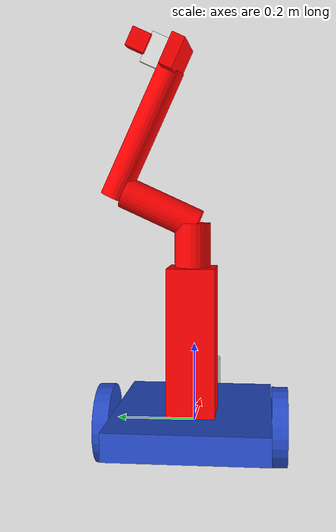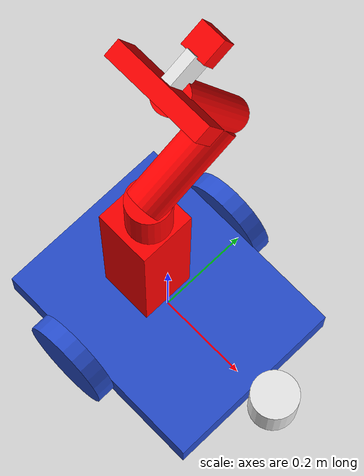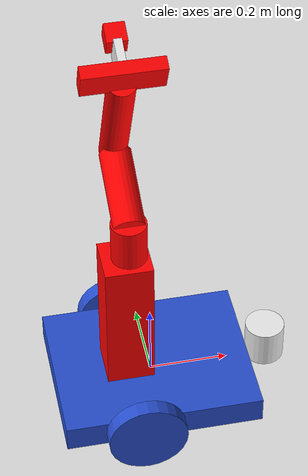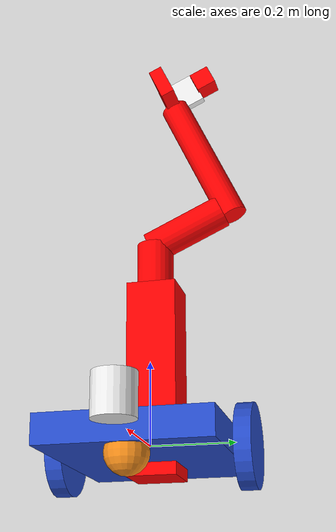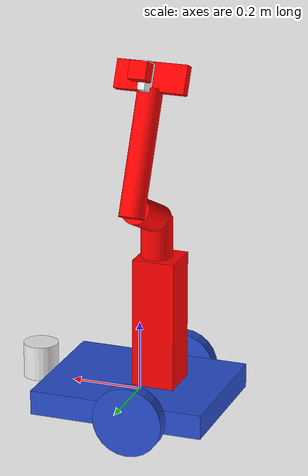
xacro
<?xml version="1.0" ?>
<robot name="m2wr" xmlns:xacro="https://www.ros.org/wiki/xacro" >

 <xacro:include filename="$(find ExperimentalRoboticsLab)/urdf/materials.xacro" />
 <xacro:include filename="$(find ExperimentalRoboticsLab)/urdf/m2wr_arm.gazebo" />

 <xacro:macro name="cylinder_inertia" params="mass r l">
    <inertia ixx="${mass*(3*r*r+l*l)/12}" ixy = "0" ixz = "0"
                iyy="${mass*(3*r*r+l*l)/12}" iyz = "0" izz="${mass*(r*r)/2}" />
 </xacro:macro>

   <xacro:macro name="link_wheel" params="name">
        <link name="${name}">
            <inertial>
              <mass value="0.8"/>
              <origin rpy="0 1.5707 1.5707" xyz="0 0 0"/>
              <inertia ixx="0.000526666666667" ixy="0" ixz="0" iyy="0.000526666666667" iyz="0" izz="0.001"/>
            </inertial>
            <collision name="link_right_wheel_collision">
              <origin rpy="0 1.5707 1.5707" xyz="0 0 0"/>
              <geometry>
                <cylinder length="0.04" radius="0.1"/>
              </geometry>
            </collision>
            <visual name="${name}_visual">
              <origin rpy="0 1.5707 1.5707" xyz="0 0 0"/>
              <geometry>
                <cylinder length="0.04" radius="0.1"/>
              </geometry>
            </visual>
        </link>
    </xacro:macro>

    <xacro:macro name="joint_wheel" params="name child origin_xyz">
      <joint name="${name}" type="continuous">
        <origin rpy="0 0 0" xyz="${origin_xyz}"/>
        <child link="${child}"/>
        <parent link="base_link"/>
        <axis rpy="0 0 0" xyz="0 1 0"/>
        <limit effort="10000" velocity="1000"/>
        <joint_properties damping="1.0" friction="1.0"/>
      </joint>
    </xacro:macro>

  <link name="base_link">
    <!-- pose and inertial -->
    <pose>0 0 0.1 0 0 0</pose>

    <inertial>
      <mass value="12"/>
      <origin rpy="0 0 0" xyz="0 0 0.1"/>
      <inertia ixx="0.0395416666667" ixy="0" ixz="0" iyy="0.106208333333" iyz="0" izz="0.106208333333"/>
    </inertial>

    <collision name="collision_chassis">
      <geometry>
        <box size="0.5 0.4 0.07"/>
      </geometry>
    </collision>

    <visual>
      <origin rpy="0 0 0" xyz="0 0 0"/>
      <geometry>
        <box size="0.5 0.4 0.07"/>
      </geometry>
      <material name="blue"/>
    </visual>

    <!-- caster front -->
    <collision name="caster_front_collision">
      <origin rpy=" 0 0 0" xyz="0.35 0 -0.05"/>
      <geometry>
        <sphere radius="0.05"/>
      </geometry>
      <surface>
        <friction>
          <ode>
            <mu>0</mu>
            <mu2>0</mu2>
            <slip1>1.0</slip1>
            <slip2>1.0</slip2>
          </ode>
        </friction>
      </surface>
    </collision>
    <visual name="caster_front_visual">
      <origin rpy=" 0 0 0" xyz="0.2 0 -0.05"/>
      <geometry>
        <sphere radius="0.05"/>
      </geometry>
    </visual>
    </link>

  <!-- Create wheels -->

  <xacro:link_wheel name="link_right_wheel" />
  <xacro:link_wheel name="link_left_wheel" />
  <xacro:joint_wheel name="joint_right_wheel"  child="link_right_wheel"  origin_xyz="-0.05 -0.22 0"  />
  <xacro:joint_wheel name="joint_left_wheel"   child="link_left_wheel"   origin_xyz="-0.05 0.22 0"  />

<!-- Laser and Link Laser-->
   <link name="laser">
    <inertial>
      <origin xyz="0 0 0" rpy="0 0 0" />
      <mass value="1.25" />
      <xacro:cylinder_inertia mass="1.2" r="0.05" l="0.1" />
    </inertial>

    <visual>
      <origin xyz="0 0 0" rpy="0 0 0" />
      <geometry>
        <cylinder radius="0.05" length="0.1"/>
      </geometry>
      <material name="white" />
    </visual>

    <collision>
      <origin xyz="0 0 0" rpy="0 0 0"/>
      <geometry>
        <cylinder radius="0.05" length="0.1"/>
      </geometry>
    </collision>
  </link>

  <joint name="joint_laser" type="fixed">
    <origin xyz="0.3 0 0.05" rpy="0 0 0"/>
    <parent link="base_link"/>
    <child link="laser"/>
  </joint>

<!--arm definition -->

  <link name="arm_base_link">
  	<inertial>
  		<mass value="0.27"/>
  		<origin xyz="0 0 0.06" rpy="0 1.57 0" />
  		<inertia ixx="0.0000416666667" ixy="0" ixz="0" iyy="0.0000416666667" iyz="0" izz="0.0000416666667"/>
  	</inertial>
  	<collision>
  	  <origin xyz="0 0 0.06" rpy="0 1.57 0"/>
      <geometry>
        <box size="0.12 0.12 0.47"/>
      </geometry>
  	</collision>
  	<visual>
  	  <origin xyz="0 0 0.06" rpy="0 1.57 0"/>
      <geometry>
        <box size="0.12 0.12 0.47"/>
      </geometry>
      <material name="red" />
  	</visual>
  </link>

  <joint name="arm_base_to_base" type="prismatic">
    <limit effort="1000.0" lower="0" upper="0.32" velocity="0.2"/>
  	<origin rpy="0 -1.57 0" xyz="0 0 0.17"/>
  	<parent link="base_link"/>
  	<child link="arm_base_link"/>
  </joint>

  <link name="arm_link_01">
  	<inertial>
  		<mass value="0.025"/>
  		<origin xyz="0 0 0" rpy="0 0 0" />
  		<inertia ixx="0.000010279" ixy="0" ixz="0" iyy="0.000010279" iyz="0" izz="0.000007225"/>
  	</inertial>
  	<collision>
  	  <origin xyz="0 0 0" rpy="0 0 0"/>
      <geometry>
        <cylinder radius="0.045" length="0.33"/>
      </geometry>
  	</collision>
  	<visual>
  	  <origin xyz="0 0 0" rpy="0 0 0"/>
      <geometry>
        <cylinder radius="0.045" length="0.33"/>
      </geometry>
      <material name="red" />
  	</visual>
  </link>

  <joint name="arm_joint_01" type="revolute">
  	<axis xyz="0 0 1"/>
  	<limit effort="1000.0" lower="-6.28" upper="6.28" velocity="0.2"/>
  	<origin rpy="0 1.57 0" xyz="0.18 0 0.05"/>
  	<parent link="arm_base_link"/>
  	<child link="arm_link_01"/>
  </joint>

    <link name="arm_link_02">
  	<inertial>
  		<mass value="0.015"/>
  		<origin xyz="0 0 0" rpy="0 0 0" />
  		<inertia ixx="0.000010279" ixy="0" ixz="0" iyy="0.000010279" iyz="0" izz="0.000007225"/>
  	</inertial>
  	<collision>
  	  <origin xyz="0 0 0" rpy="0 0 0"/>
      <geometry>
        <cylinder radius="0.04" length="0.2"/>
      </geometry>
  	</collision>
  	<visual>
  	  <origin xyz="0 0 0" rpy="0 0 0"/>
      <geometry>
        <cylinder radius="0.04" length="0.2"/>
      </geometry>
      <material name="red" />
  	</visual>
  </link>

  <joint name="arm_joint_02" type="revolute">
  	<axis xyz="0 0 1"/>
  	<limit effort="1000.0" lower="-6.28" upper="6.28" velocity="0.2"/>
  	<origin rpy="2 0 0" xyz="0 0.08 0.2"/>
  	<parent link="arm_link_01"/>
  	<child link="arm_link_02"/>
  </joint>

      <link name="arm_link_03">
  	<inertial>
  		<mass value="0.004"/>
  		<origin xyz="0 0 0.15" rpy="0 0 0" />
  		<inertia ixx="0.000010279" ixy="0" ixz="0" iyy="0.000010279" iyz="0" izz="0.000007225"/>
  	</inertial>
  	<collision>
  	  <origin xyz="0 0 0.15" rpy="0 0 0"/>
      <geometry>
        <cylinder radius="0.035" length="0.35"/>
      </geometry>
  	</collision>
  	<visual>
  	  <origin xyz="0 0 0.15" rpy="0 0 0"/>
      <geometry>
        <cylinder radius="0.035" length="0.35"/>
      </geometry>
      <material name="red" />
  	</visual>
  </link>

  <joint name="arm_joint_03" type="revolute">
  	<axis xyz="0 0 1"/>
  	<limit effort="1000.0" lower="-6.28" upper="6.28" velocity="0.2"/>
  	<origin rpy="-1.57 0 0" xyz="0 0 -0.12"/>
  	<parent link="arm_link_02"/>
  	<child link="arm_link_03"/>
  </joint>

    <link name="arm_link_04">
  	<inertial>
  		<mass value="0.002"/>
  		<origin xyz="0 0 0.047" rpy="0 0 0" />
  		<inertia ixx="0.000010279" ixy="0" ixz="0" iyy="0.000010279" iyz="0" izz="0.000007225"/>
  	</inertial>
  	<collision>
  	  <origin xyz="0 0 0.047" rpy="0 0 1.57"/>
      <geometry>
        <box size="0.034 0.2 0.08"/>
      </geometry>
  	</collision>
  	<visual>
  	  <origin xyz="0 0 0.047" rpy="0 0 1.57"/>
      <geometry>
        <box size="0.034 0.2 0.08"/>
      </geometry>
      <material name="red" />
  	</visual>
  </link>

  <joint name="arm_joint_04" type="revolute">
  	<axis xyz="1 0 0"/>
  	<limit effort="1000.0" lower="-6.28" upper="6.28" velocity="0.4"/>
  	<origin rpy="0 0 0" xyz="0 0 0.31"/>
  	<parent link="arm_link_03"/>
  	<child link="arm_link_04"/>
  </joint>

<link name="cluedo_link">
  	<inertial>
  		<mass value="0.002"/>
  		<origin xyz="0 0 0" rpy="0 0 0" />
  		<inertia ixx="0.000010279" ixy="0" ixz="0" iyy="0.000010279" iyz="0" izz="0.000007225"/>
  	</inertial>
  	<collision>
  	  <origin xyz="0 0.048 0.04" rpy="0 3.1415 -1.57"/>
      <geometry>
        <box size="0.06 0.02 0.08"/>
      </geometry>
  	</collision>
  	<visual>
  	  <origin xyz="0 0.048 0.04" rpy="0 3.1415 -1.57"/>
      <geometry>
        <box size="0.06 0.02 0.08"/>
      </geometry>
      <material name="white" />
  	</visual>
  </link>

  <joint name="cluedo_joint" type="prismatic">
  	<axis xyz="1 0 0"/>
  	<limit effort="1000.0" lower="-0.04" upper="0.035" velocity="0.1"/>
  	<origin rpy="0 0 0" xyz="0 0 0"/>
  	<parent link="arm_link_04"/>
  	<child link="cluedo_link"/>
  </joint>

  <link name="camera_link">
	    <collision>
	      <origin xyz="0 0 0.025" rpy="0 0 0"/>
	      <geometry>
		<box size="0.05 0.05 0.05"/>
	      </geometry>
	    </collision>
	    <visual>
	      <origin xyz="0 0 0.025" rpy="0 0 0"/>
	      <geometry>
		<box size="0.05 0.05 0.05"/>
	      </geometry>
	      <material name="red">
		<color rgba="1 0 0 1"/>
	      </material>
	    </visual>
	    <inertial>
	      <mass value="1e-5" />
	      <origin xyz="0 0 0.025" rpy="0 0 0"/>
	      <inertia ixx="1e-6" ixy="0" ixz="0" iyy="1e-6" iyz="0" izz="1e-6" />
	    </inertial>
  </link>

  <joint name="camera_joint" type="fixed">
	    <axis xyz="0 1 0" />
	    <origin xyz="0 0.1 0.02" rpy="0 0 1.57"/>
	    <parent link="cluedo_link"/>
	    <child link="camera_link"/>
	 </joint>

<transmission name="arm_joint_base_trans">
<type>transmission_interface/SimpleTransmission</type>
<joint name="arm_base_to_base">
<hardwareInterface>hardware_interface/EffortJointInterface</hardwareInterface>
</joint>
<actuator name="motor0">
<hardwareInterface>hardware_interface/EffortJointInterface</hardwareInterface>
<mechanicalInterface>1</mechanicalInterface>
</actuator>
</transmission>

<transmission name="arm_joint_01_trans">
<type>transmission_interface/SimpleTransmission</type>
<joint name="arm_joint_01">
<hardwareInterface>hardware_interface/EffortJointInterface</hardwareInterface>
</joint>
<actuator name="motor1">
<hardwareInterface>hardware_interface/EffortJointInterface</hardwareInterface>
<mechanicalInterface>1</mechanicalInterface>
</actuator>
</transmission>

<transmission name="arm_joint_02_trans">
<type>transmission_interface/SimpleTransmission</type>
<joint name="arm_joint_02">
<hardwareInterface>hardware_interface/EffortJointInterface</hardwareInterface>
</joint>
<actuator name="motor2">
<hardwareInterface>hardware_interface/EffortJointInterface</hardwareInterface>
<mechanicalInterface>1</mechanicalInterface>
</actuator>
</transmission>

<transmission name="arm_joint_03_trans">
<type>transmission_interface/SimpleTransmission</type>
<joint name="arm_joint_03">
<hardwareInterface>hardware_interface/EffortJointInterface</hardwareInterface>
</joint>
<actuator name="motor3">
<hardwareInterface>hardware_interface/EffortJointInterface</hardwareInterface>
<mechanicalInterface>1</mechanicalInterface>
</actuator>
</transmission>

<transmission name="arm_joint_04_trans">
<type>transmission_interface/SimpleTransmission</type>
<joint name="arm_joint_04">
<hardwareInterface>hardware_interface/EffortJointInterface</hardwareInterface>
</joint>
<actuator name="motor4">
<hardwareInterface>hardware_interface/EffortJointInterface</hardwareInterface>
<mechanicalInterface>1</mechanicalInterface>
</actuator>
</transmission>

<transmission name="cluedo_joint_trans">
<type>transmission_interface/SimpleTransmission</type>
<joint name="cluedo_joint">
<hardwareInterface>hardware_interface/EffortJointInterface</hardwareInterface>
</joint>
<actuator name="motor5">
<hardwareInterface>hardware_interface/EffortJointInterface</hardwareInterface>
<mechanicalInterface>1</mechanicalInterface>
</actuator>
</transmission>

</robot>
